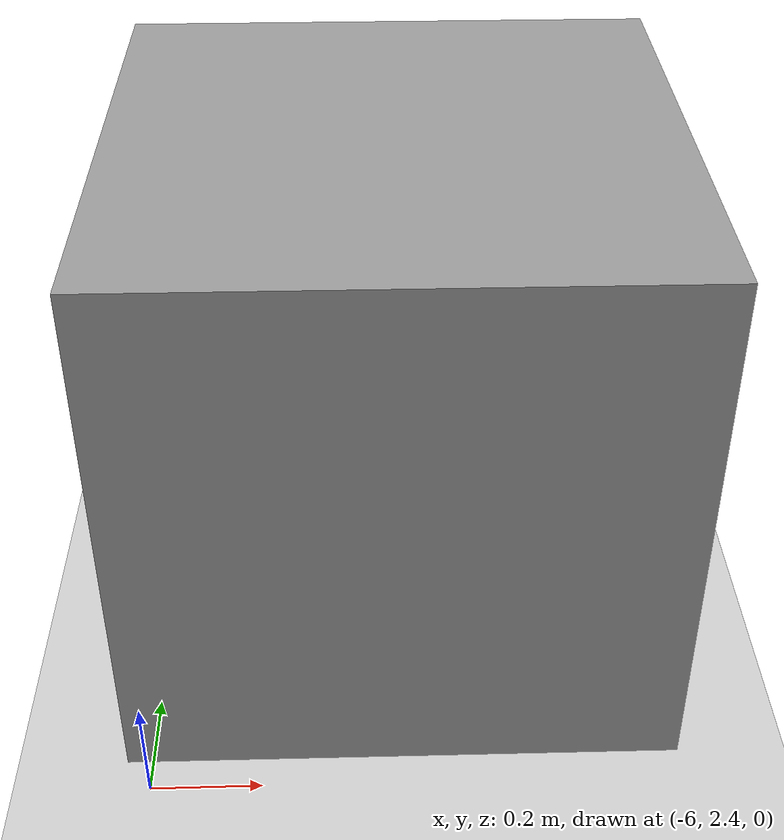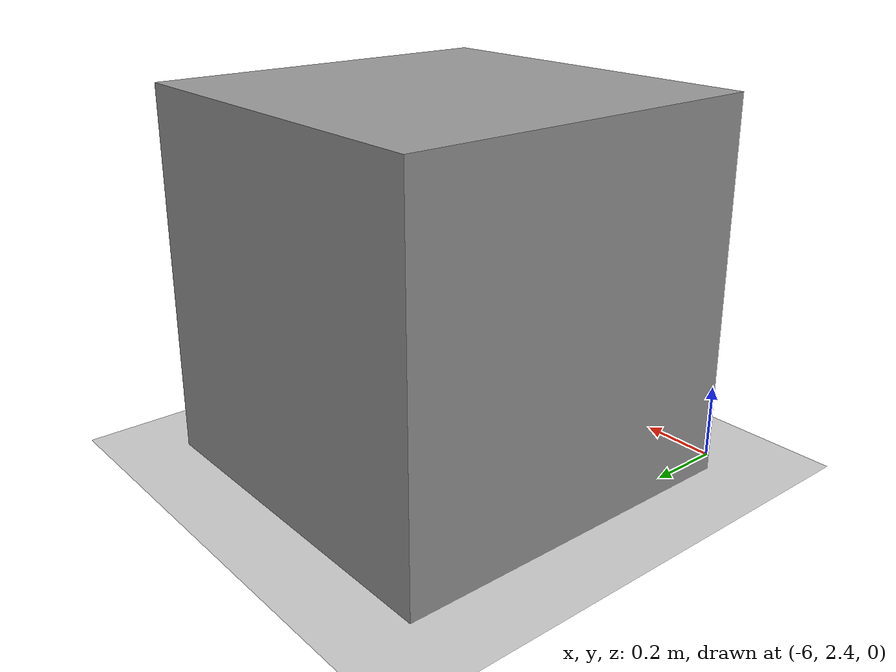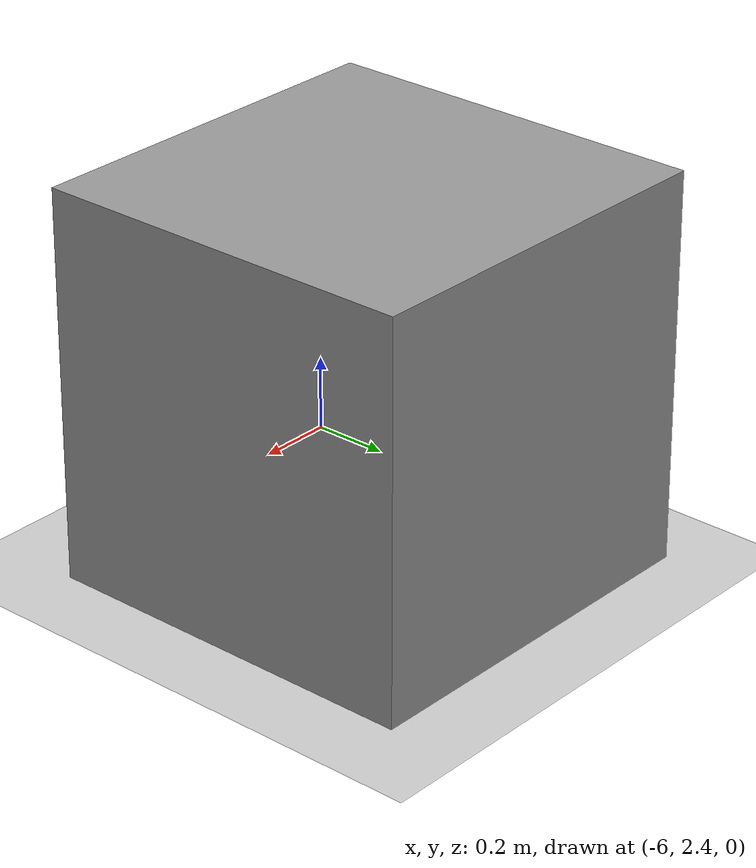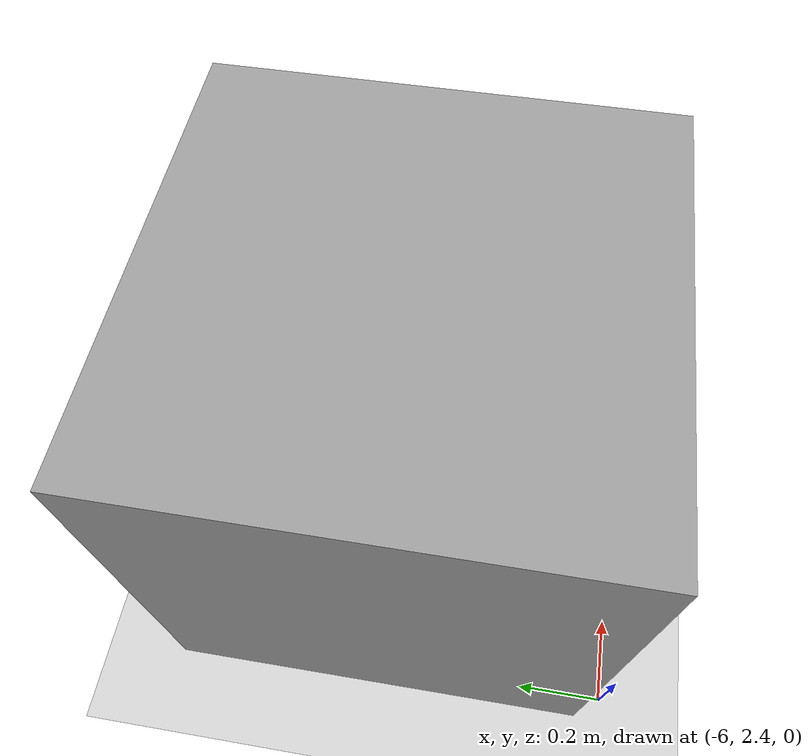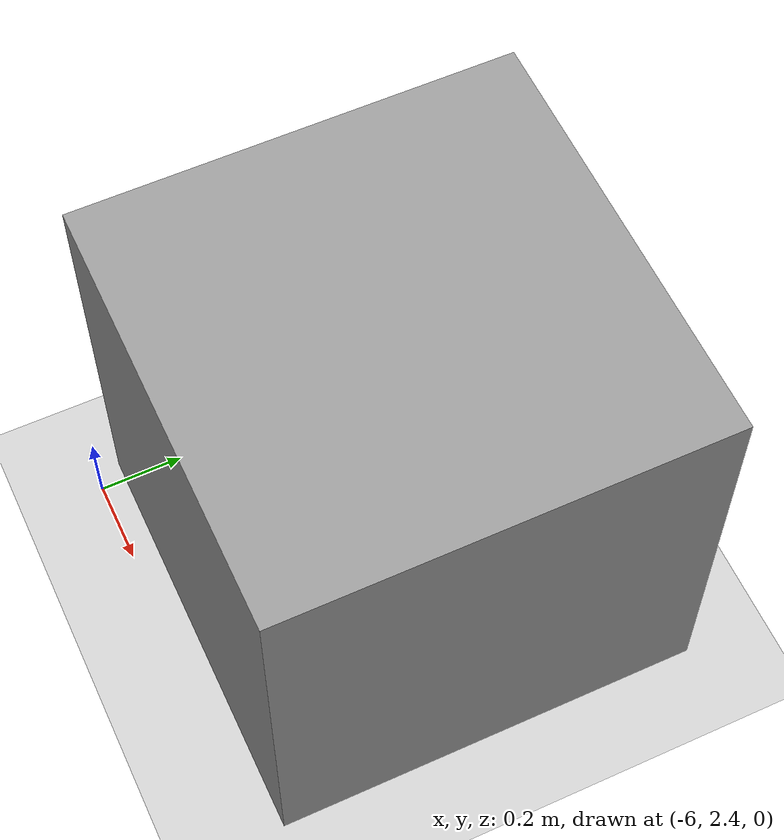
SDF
<sdf version="1.9">
 <world name="default">
  <model name="ground_plane">
   <static>true</static>
   <link name="link">
    <collision name="collision">
     <geometry><plane><normal>0 0 1</normal><size>100 100</size></plane></geometry>
     <surface><friction><ode><mu>100</mu><mu2>50</mu2></ode></friction></surface>
    </collision>
    <visual name="visual">
     <cast_shadows>false</cast_shadows>
     <geometry><plane><normal>0 0 1</normal><size>100 100</size></plane></geometry>
     <material>
      <script><uri>file://media/materials/scripts/gazebo.material</uri><name>Gazebo/Grey</name></script>
     </material>
    </visual>
   </link>
  </model>
  <model name="unit_box_0">
   <pose>-5.54697 2.9594499999999999 0.49999500000000002 0 1.0000000000000001e-05 0</pose>
   <link name="link">
    <inertial>
     <mass>1</mass>
     <inertia>
      <ixx>0.16666700000000001</ixx>
      <ixy>0</ixy>
      <ixz>0</ixz>
      <iyy>0.16666700000000001</iyy>
      <iyz>0</iyz>
      <izz>0.16666700000000001</izz>
     </inertia>
    </inertial>
    <collision name="collision"><geometry><box><size>1 1 1</size></box></geometry></collision>
    <visual name="visual">
     <geometry><box><size>1 1 1</size></box></geometry>
     <material>
      <script><name>Gazebo/Grey</name><uri>file://media/materials/scripts/gazebo.material</uri></script>
     </material>
    </visual>
   </link>
  </model>
 </world>
</sdf>
